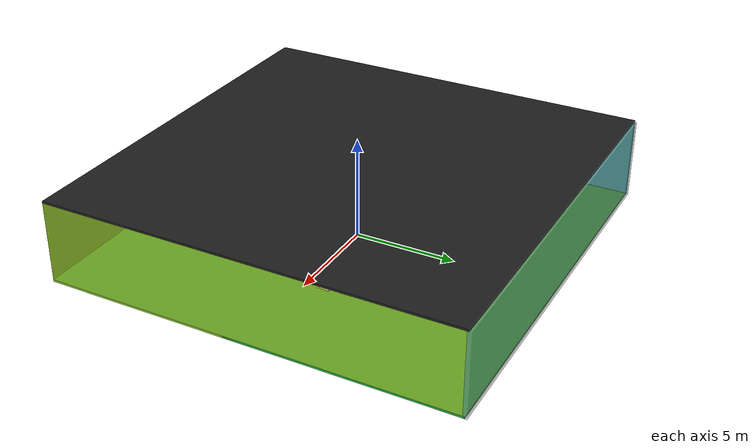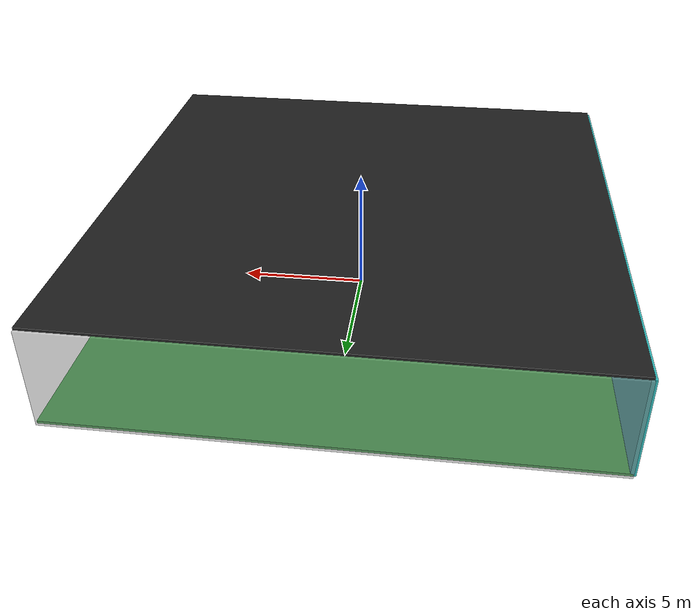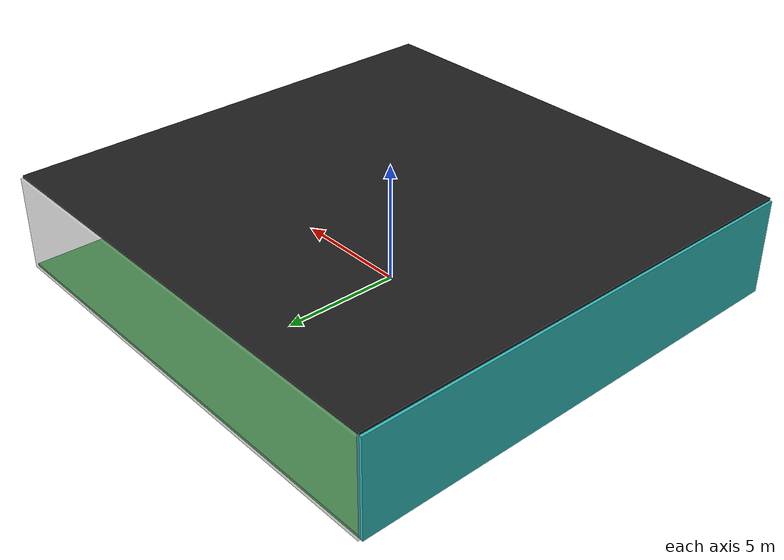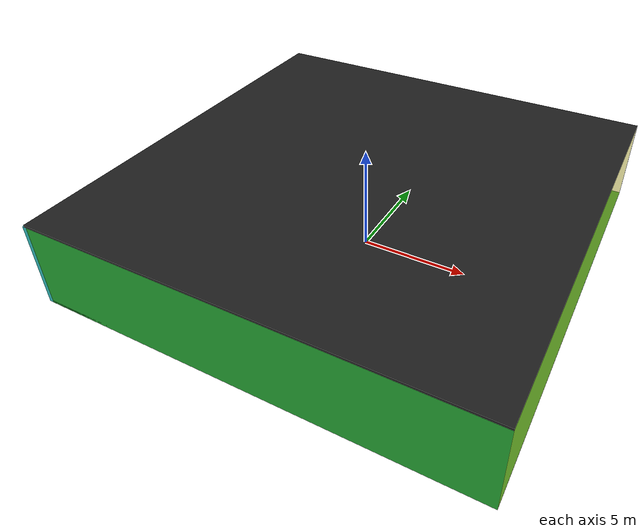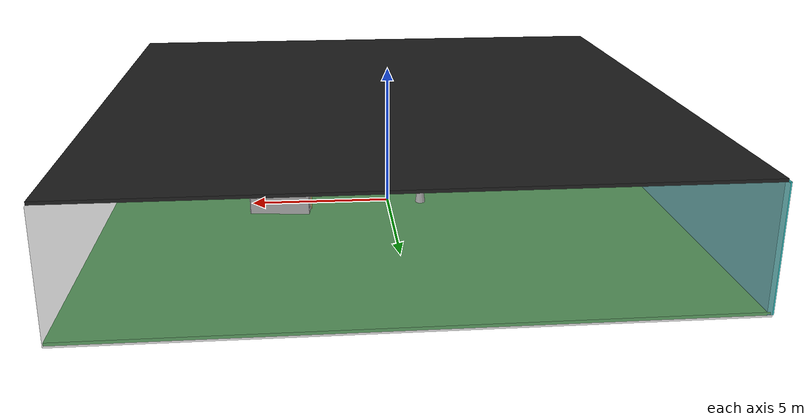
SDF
<sdf version="1.4">
 <world name="default">
  <physics type="ode">
   <max_step_size>0.001</max_step_size>
   <real_time_factor>1</real_time_factor>
   <real_time_update_rate>1000</real_time_update_rate>
   <gravity>0 0 -9.8</gravity>
  </physics>
  <scene><ambient>0.4 0.4 0.4 1</ambient><background>0.7 0.7 0.7 1</background><shadows>1</shadows></scene>
  <model name="Surrounding">
   <static>1</static>
   <link name="Ceiling">
    <collision name="Ceiling_Collision"><geometry><box><size>20 20 0.1</size></box></geometry></collision>
    <visual name="Ceiling_Visual">
     <geometry><box><size>20 20 0.1</size></box></geometry>
     <material>
      <script><uri>file://media/materials/scripts/gazebo.material</uri><name>Gazebo/FlatBlack</name></script>
     </material>
    </visual>
    <pose>0 0 4.05 0 0 0</pose>
   </link>
   <link name="Wall_South">
    <collision name="Wall_South_Collision">
     <geometry><box><size>20 0 4</size></box></geometry>
     <pose>0 0 2 0 -0 0</pose>
    </collision>
    <visual name="Wall_South_Visual">
     <pose>0 0 2 0 -0 0</pose>
     <geometry><box><size>20 0 4</size></box></geometry>
     <material>
      <script><uri>file://media/materials/scripts/gazebo.material</uri><name>Gazebo/Green</name></script>
     </material>
    </visual>
    <velocity_decay><linear>0</linear><angular>0</angular></velocity_decay>
    <pose>0 -10 0 0 -0 0</pose>
   </link>
   <link name="Wall_East">
    <collision name="Wall_21_Collision">
     <geometry><box><size>20 0 4</size></box></geometry>
     <pose>0 0 2 0 -0 0</pose>
    </collision>
    <visual name="Wall_21_Visual">
     <pose>0 0 2 0 -0 0</pose>
     <geometry><box><size>20 0 4</size></box></geometry>
     <material>
      <script>
       <uri>file://media/materials/scripts/gazebo.material</uri>
       <name>Gazebo/YellowTransparent</name>
      </script>
     </material>
    </visual>
    <velocity_decay><linear>0</linear><angular>0</angular></velocity_decay>
    <pose>10 0 0 0 -0 1.5708</pose>
   </link>
   <link name="Wall_North">
    <collision name="Wall_22_Collision">
     <geometry><box><size>20 0.2 4</size></box></geometry>
     <pose>0 0 2 0 -0 0</pose>
    </collision>
    <visual name="Wall_22_Visual">
     <pose>0 0 2 0 -0 0</pose>
     <geometry><box><size>20 0.2 4</size></box></geometry>
     <material>
      <script><uri>file://media/materials/scripts/gazebo.material</uri><name>Gazebo/GreyTransparent</name></script>
     </material>
    </visual>
    <velocity_decay><linear>0</linear><angular>0</angular></velocity_decay>
    <pose>0 10 0 0 -0 0</pose>
   </link>
   <link name="Wall_West">
    <collision name="Wall_23_Collision">
     <geometry><box><size>20 0.2 4</size></box></geometry>
     <pose>0 0 2 0 -0 0</pose>
    </collision>
    <visual name="Wall_23_Visual">
     <pose>0 0 2 0 -0 0</pose>
     <geometry><box><size>20 0.2 4</size></box></geometry>
     <material>
      <script>
       <uri>file://media/materials/scripts/gazebo.material</uri>
       <name>Gazebo/TurquoiseGlowOutline</name>
      </script>
     </material>
    </visual>
    <velocity_decay><linear>0</linear><angular>0</angular></velocity_decay>
    <pose>-10 0 0 0 0 -1.5708</pose>
   </link>
   <link name="Ground_link">
    <collision name="collision">
     <pose>0 0 .05 0 -0 0</pose>
     <geometry><box><size>20 20 0.1</size></box></geometry>
    </collision>
    <visual name="visual">
     <pose>0 0 .05 0 -0 0</pose>
     <geometry><box><size>20 20 0.1</size></box></geometry>
     <material>
      <script><uri>file://media/materials/scripts/gazebo.material</uri><name>Gazebo/Green</name></script>
     </material>
    </visual>
   </link>
   <static>1</static>
  </model>
  <spherical_coordinates>
   <surface_model>EARTH_WGS84</surface_model>
   <latitude_deg>0</latitude_deg>
   <longitude_deg>0</longitude_deg>
   <elevation>0</elevation>
   <heading_deg>0</heading_deg>
  </spherical_coordinates>
  <light name="lightball_0" type="diffuse">
   <diffuse>0.8 0.8 0.8 1</diffuse>
   <specular>0.2 0.2 0.2 1</specular>
   <attenuation>
    <range>100</range>
    <constant>0.7</constant>
    <linear>0.01</linear>
    <quadratic>0.001</quadratic>
   </attenuation>
   <direction>-0.5 0.1 -0.9</direction>
   <pose>2.37316600718 -3.6569998931 2.74809885053 0 0 0</pose>
  </light>
  <light name="lightball_1" type="diffuse">
   <diffuse>0.8 0.8 0.8 1</diffuse>
   <specular>0.2 0.2 0.2 1</specular>
   <attenuation>
    <range>100</range>
    <constant>0.7</constant>
    <linear>0.01</linear>
    <quadratic>0.001</quadratic>
   </attenuation>
   <direction>-0.5 0.1 -0.9</direction>
   <pose>0.108046162988 3.12627222798 1.76142923195 0 0 0</pose>
  </light>
  <light name="lightball_2" type="diffuse">
   <diffuse>0.8 0.8 0.8 1</diffuse>
   <specular>0.2 0.2 0.2 1</specular>
   <attenuation>
    <range>100</range>
    <constant>0.7</constant>
    <linear>0.01</linear>
    <quadratic>0.001</quadratic>
   </attenuation>
   <direction>-0.5 0.1 -0.9</direction>
   <pose>3.90517592396 0.237705177318 3.34649650078 0 0 0</pose>
  </light>
  <light name="lightball_3" type="diffuse">
   <diffuse>0.8 0.8 0.8 1</diffuse>
   <specular>0.2 0.2 0.2 1</specular>
   <attenuation>
    <range>100</range>
    <constant>0.7</constant>
    <linear>0.01</linear>
    <quadratic>0.001</quadratic>
   </attenuation>
   <direction>-0.5 0.1 -0.9</direction>
   <pose>3.32893223643 -7.04920565537 0.624939576412 0 0 0</pose>
  </light>
  <light name="lightball_4" type="diffuse">
   <diffuse>0.8 0.8 0.8 1</diffuse>
   <specular>0.2 0.2 0.2 1</specular>
   <attenuation>
    <range>100</range>
    <constant>0.7</constant>
    <linear>0.01</linear>
    <quadratic>0.001</quadratic>
   </attenuation>
   <direction>-0.5 0.1 -0.9</direction>
   <pose>8.42137573395 1.50597058234 3.50172530575 0 0 0</pose>
  </light>
  <include>
   <uri>model://construction_cone</uri>
   <pose>-1.16441957399 0.582800571028 0 0 0 2.93651530662</pose>
  </include>
  <include>
   <uri>model://robocup_3Dsim_goal</uri>
   <pose>3.91171976046 0.82305608202 0 0 0 1.45929555949</pose>
  </include>
 </world>
</sdf>

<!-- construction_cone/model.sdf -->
<sdf version="1.5">
  <model name="Construction Cone">
    <link name="link">
      <collision name="collision">
        <geometry>
          <mesh>
            <scale>10 10 10</scale>
            <uri>file://isr-testbed/construction_cone/meshes/construction_cone.dae</uri>
          </mesh>
        </geometry>
      </collision>
      <visual name="visual">
        <geometry>
          <mesh>
            <scale>10 10 10</scale>
            <uri>file://isr-testbed/construction_cone/meshes/construction_cone.dae</uri>
          </mesh>
        </geometry>
      </visual>
    </link>
  </model>
</sdf>

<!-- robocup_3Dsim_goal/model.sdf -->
<sdf version="1.5">
  <model name="robocup_3d_goal">
    <static>true</static>
    <link name="left_post">
      <pose>0 1.05 0.45 0 0 0</pose>
      <collision name="collision">
        <geometry>
          <cylinder>
            <radius>0.05</radius>
            <length>0.9</length>
          </cylinder>
        </geometry>
      </collision>
      <visual name="visual">
        <geometry>
          <cylinder>
            <radius>0.05</radius>
            <length>0.9</length>
          </cylinder>
        </geometry>
        <material>
          <script>
            <uri>file://media/materials/scripts/gazebo.material</uri>
            <name>Gazebo/ZincYellow</name>
          </script>
        </material>
      </visual>
    </link>
    <link name="left_support_horiz_lower">
      <pose>0.30 1.05 0.01 0 0 0</pose>
      <collision name="collision">
        <geometry>
          <box>
            <size>0.50 0.02 0.02</size>
          </box>
        </geometry>
      </collision>
      <visual name="visual">
        <geometry>
          <box>
            <size>0.50 0.02 0.02</size>
          </box>
        </geometry>
        <material>
          <script>
            <uri>file://media/materials/scripts/gazebo.material</uri>
            <name>Gazebo/White</name>
          </script>
        </material>
      </visual>
    </link>
    <link name="left_support_horiz_upper">
      <pose>0.30 1.05 0.79 0 0 0</pose>
      <collision name="collision">
        <geometry>
          <box>
            <size>0.50 0.02 0.02</size>
          </box>
        </geometry>
      </collision>
      <visual name="visual">
        <geometry>
          <box>
            <size>0.50 0.02 0.02</size>
          </box>
        </geometry>
        <material>
          <script>
            <uri>file://media/materials/scripts/gazebo.material</uri>
            <name>Gazebo/White</name>
          </script>
        </material>
      </visual>
    </link>
    <link name="left_support_vertical">
      <pose>0.56 1.05 0.4 0 1.5708 0</pose>
      <collision name="collision">
        <geometry>
          <box>
            <size>0.80 0.02 0.02</size>
          </box>
        </geometry>
      </collision>
      <visual name="visual">
        <geometry>
          <box>
            <size>0.80 0.02 0.02</size>
          </box>
        </geometry>
        <material>
          <script>
            <uri>file://media/materials/scripts/gazebo.material</uri>
            <name>Gazebo/White</name>
          </script>
        </material>
      </visual>
    </link>
    <link name="right_support_horiz_lower">
      <pose>0.30 -1.05 0.01 0 0 0</pose>
      <collision name="collision">
        <geometry>
          <box>
            <size>0.50 0.02 0.02</size>
          </box>
        </geometry>
      </collision>
      <visual name="visual">
        <geometry>
          <box>
            <size>0.50 0.02 0.02</size>
          </box>
        </geometry>
        <material>
          <script>
            <uri>file://media/materials/scripts/gazebo.material</uri>
            <name>Gazebo/White</name>
          </script>
        </material>
      </visual>
    </link>
    <link name="right_support_horiz_upper">
      <pose>0.30 -1.05 0.79 0 0 0</pose>
      <collision name="collision">
        <geometry>
          <box>
            <size>0.50 0.02 0.02</size>
          </box>
        </geometry>
      </collision>
      <visual name="visual">
        <geometry>
          <box>
            <size>0.50 0.02 0.02</size>
          </box>
        </geometry>
        <material>
          <script>
            <uri>file://media/materials/scripts/gazebo.material</uri>
            <name>Gazebo/White</name>
          </script>
        </material>
      </visual>
    </link>
    <link name="right_support_vertical">
      <pose>0.56 -1.05 0.4 0 1.5708 0</pose>
      <collision name="collision">
        <geometry>
          <box>
            <size>0.80 0.02 0.02</size>
          </box>
        </geometry>
      </collision>
      <visual name="visual">
        <geometry>
          <box>
            <size>0.80 0.02 0.02</size>
          </box>
        </geometry>
        <material>
          <script>
            <uri>file://media/materials/scripts/gazebo.material</uri>
            <name>Gazebo/White</name>
          </script>
        </material>
      </visual>
    </link>
    <link name="center_support_horiz_lower">
      <pose>0.56 0 0.01 0 1.5708 0</pose>
      <collision name="collision">
        <geometry>
          <box>
            <size>0.02 2.08 0.02</size>
          </box>
        </geometry>
      </collision>
      <visual name="visual">
        <geometry>
          <box>
            <size>0.02 2.08 0.02</size>
          </box>
        </geometry>
        <material>
          <script>
            <uri>file://media/materials/scripts/gazebo.material</uri>
            <name>Gazebo/White</name>
          </script>
        </material>
      </visual>
    </link>
    <link name="center_support_horiz_upper">
      <pose>0.56 0 0.79 0 1.5708 0</pose>
      <collision name="collision">
        <geometry>
          <box>
            <size>0.02 2.08 0.02</size>
          </box>
        </geometry>
      </collision>
      <visual name="visual">
        <geometry>
          <box>
            <size>0.02 2.08 0.02</size>
          </box>
        </geometry>
        <material>
          <script>
            <uri>file://media/materials/scripts/gazebo.material</uri>
            <name>Gazebo/White</name>
          </script>
        </material>
      </visual>
    </link>
    <link name="right_post">
      <pose>0 -1.05 0.45 0 0 0</pose>
      <collision name="collision">
        <geometry>
          <cylinder>
            <radius>0.05</radius>
            <length>0.9</length>
          </cylinder>
        </geometry>
      </collision>
      <visual name="visual">
        <geometry>
          <cylinder>
            <radius>0.05</radius>
            <length>0.9</length>
          </cylinder>
        </geometry>
        <material>
          <script>
            <uri>file://media/materials/scripts/gazebo.material</uri>
            <name>Gazebo/ZincYellow</name>
          </script>
        </material>
      </visual>
    </link>
    <link name="crossbar">
      <pose>0 0 0.85 1.57 1.57 0</pose>
      <collision name="collision">
        <geometry>
          <cylinder>
            <radius>0.05</radius>
            <length>2.0</length>
          </cylinder>
        </geometry>
      </collision>
      <visual name="visual">
        <geometry>
          <cylinder>
            <radius>0.05</radius>
            <length>2.0</length>
          </cylinder>
        </geometry>
        <material>
          <script>
            <uri>file://media/materials/scripts/gazebo.material</uri>
            <name>Gazebo/ZincYellow</name>
          </script>
        </material>
      </visual>
    </link>
    <link name="center_net">
      <pose>0.56 0 0.40 0 0 0</pose>
      <collision name="collision">
        <geometry>
          <box>
            <size>0.01 2.1 0.80</size>
          </box>
        </geometry>
      </collision>
      <visual name="visual">
        <geometry>
          <box>
            <size>0.01 2.1 0.80</size>
          </box>
        </geometry>
        <material>
          <script>
            <uri>model://../model_source/models/robocup09_spl_field/materials/scripts/</uri>
            <uri>model://../model_source/models/robocup09_spl_field/materials/textures/</uri>
            <name>RoboCup/Net</name>
          </script>
        </material>
      </visual>
    </link>
    <link name="left_net">
      <pose>0.30 1.05 0.40 0 0 0</pose>
      <collision name="collision">
        <geometry>
          <box>
            <size>0.50 0.01 0.76</size>
          </box>
        </geometry>
      </collision>
      <visual name="visual">
        <geometry>
          <box>
            <size>0.50 0.01 0.76</size>
          </box>
        </geometry>
        <material>
          <script>
            <uri>model://../model_source/models/robocup09_spl_field/materials/scripts/</uri>
            <uri>model://../model_source/models/robocup09_spl_field/materials/textures/</uri>
            <name>RoboCup/Net</name>
          </script>
        </material>
      </visual>
    </link>
    <link name="right_net">
      <pose>0.30 -1.05 0.40 0 0 0</pose>
      <collision name="collision">
        <geometry>
          <box>
            <size>0.50 0.01 0.76</size>
          </box>
        </geometry>
      </collision>
      <visual name="visual">
        <geometry>
          <box>
            <size>0.50 0.01 0.76</size>
          </box>
        </geometry>
        <material>
          <script>
            <uri>model://../model_source/models/robocup09_spl_field/materials/scripts/</uri>
            <uri>model://../model_source/models/robocup09_spl_field/materials/textures/</uri>
            <name>RoboCup/Net</name>
          </script>
        </material>
      </visual>
    </link>
  </model>
</sdf>
